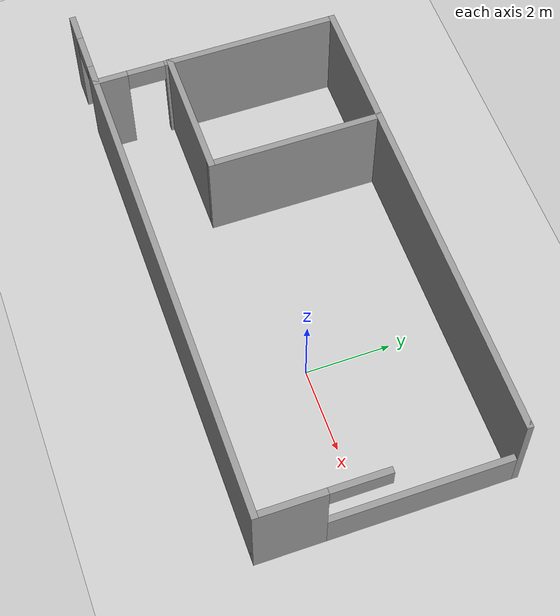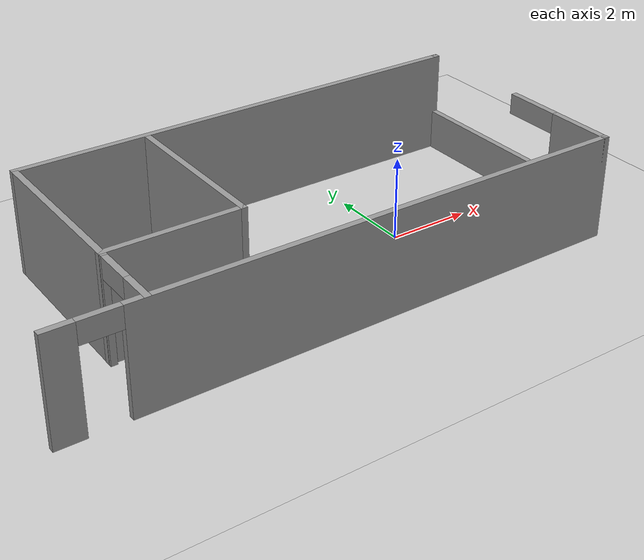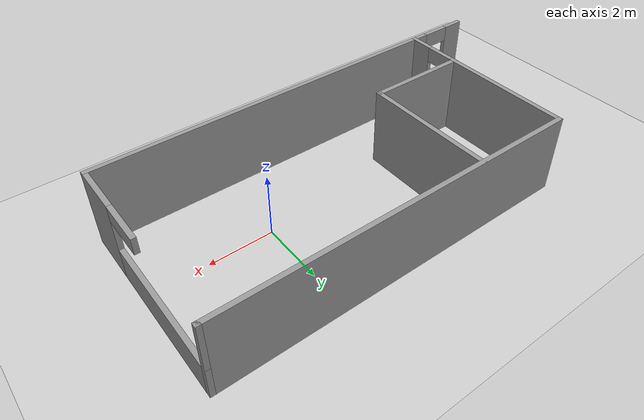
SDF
<sdf version="1.7">
 <world name="default">
  <light name="sun" type="directional">
   <pose>0 0 10 0 -0 0</pose>
   <diffuse>0.8 0.8 0.8 1</diffuse>
   <specular>0.2 0.2 0.2 1</specular>
   <attenuation>
    <range>1000</range>
    <constant>0.9</constant>
    <linear>0.01</linear>
    <quadratic>0.001</quadratic>
   </attenuation>
   <direction>-0.5 0.1 -0.9</direction>
   <spot><inner_angle>0</inner_angle><outer_angle>0</outer_angle><falloff>0</falloff></spot>
  </light>
  <model name="ground_plane">
   <static>1</static>
   <link name="link">
    <collision name="collision">
     <geometry><plane><normal>0 0 1</normal><size>100 100</size></plane></geometry>
     <surface><friction><ode><mu>100</mu><mu2>50</mu2></ode></friction></surface>
    </collision>
    <visual name="visual">
     <cast_shadows>0</cast_shadows>
     <geometry><plane><normal>0 0 1</normal><size>100 100</size></plane></geometry>
     <material>
      <script><uri>file://media/materials/scripts/gazebo.material</uri><name>Gazebo/Grey</name></script>
     </material>
    </visual>
   </link>
  </model>
  <gravity>0 0 -9.8</gravity>
  <magnetic_field>6e-06 2.3e-05 -4.2e-05</magnetic_field>
  <atmosphere type="adiabatic"/>
  <physics type="ode">
   <max_step_size>0.001</max_step_size>
   <real_time_factor>1</real_time_factor>
   <real_time_update_rate>1000</real_time_update_rate>
  </physics>
  <scene><ambient>0.4 0.4 0.4 1</ambient><background>0.7 0.7 0.7 1</background><shadows>1</shadows></scene>
  <audio><device>default</device></audio>
  <spherical_coordinates>
   <surface_model>EARTH_WGS84</surface_model>
   <latitude_deg>0</latitude_deg>
   <longitude_deg>0</longitude_deg>
   <elevation>0</elevation>
   <heading_deg>0</heading_deg>
  </spherical_coordinates>
  <model name="robotics_lab">
   <pose>-2.86455 0.433061 0 0 -0 0</pose>
   <link name="Wall_0">
    <pose>-0 -2.925 0 0 -0 0</pose>
    <visual name="Wall_0_Visual_0">
     <pose>-6.40405 0 1.25 0 -0 0</pose>
     <geometry><box><size>0.691894 0.15 2.5</size></box></geometry>
     <material>
      <script><uri>file://media/materials/scripts/gazebo.material</uri><name>Gazebo/Grey</name></script>
      <ambient>1 1 1 1</ambient>
     </material>
     <meta><layer>0</layer></meta>
    </visual>
    <collision name="Wall_0_Collision_0">
     <geometry><box><size>0.691894 0.15 2.5</size></box></geometry>
     <pose>-6.40405 0 1.25 0 -0 0</pose>
    </collision>
    <visual name="Wall_0_Visual_1">
     <pose>0.795947 0 1.25 0 -0 0</pose>
     <geometry><box><size>11.9081 0.15 2.5</size></box></geometry>
     <material>
      <script><uri>file://media/materials/scripts/gazebo.material</uri><name>Gazebo/Grey</name></script>
      <ambient>1 1 1 1</ambient>
     </material>
     <meta><layer>0</layer></meta>
    </visual>
    <collision name="Wall_0_Collision_1">
     <geometry><box><size>11.9081 0.15 2.5</size></box></geometry>
     <pose>0.795947 0 1.25 0 -0 0</pose>
    </collision>
    <visual name="Wall_0_Visual_2">
     <pose>-5.60811 0 2.25 0 -0 0</pose>
     <geometry><box><size>0.9 0.15 0.5</size></box></geometry>
     <material>
      <script><uri>file://media/materials/scripts/gazebo.material</uri><name>Gazebo/Grey</name></script>
      <ambient>1 1 1 1</ambient>
     </material>
     <meta><layer>0</layer></meta>
    </visual>
    <collision name="Wall_0_Collision_2">
     <geometry><box><size>0.9 0.15 0.5</size></box></geometry>
     <pose>-5.60811 0 2.25 0 -0 0</pose>
    </collision>
   </link>
   <link name="Wall_1">
    <pose>6.675 0 0 0 -0 1.5708</pose>
    <visual name="Wall_1_Visual_0">
     <pose>-2.18919 0 1.25 0 -0 0</pose>
     <geometry><box><size>1.62162 0.15 2.5</size></box></geometry>
     <material>
      <script><uri>file://media/materials/scripts/gazebo.material</uri><name>Gazebo/Grey</name></script>
      <ambient>1 1 1 1</ambient>
     </material>
     <meta><layer>0</layer></meta>
    </visual>
    <collision name="Wall_1_Collision_0">
     <geometry><box><size>1.62162 0.15 2.5</size></box></geometry>
     <pose>-2.18919 0 1.25 0 -0 0</pose>
    </collision>
    <visual name="Wall_1_Visual_1">
     <pose>0.810809 0 0.5 0 -0 0</pose>
     <geometry><box><size>4.37838 0.15 1</size></box></geometry>
     <material>
      <script><uri>file://media/materials/scripts/gazebo.material</uri><name>Gazebo/Grey</name></script>
      <ambient>1 1 1 1</ambient>
     </material>
     <meta><layer>0</layer></meta>
    </visual>
    <collision name="Wall_1_Collision_1">
     <geometry><box><size>4.37838 0.15 1</size></box></geometry>
     <pose>0.810809 0 0.5 0 -0 0</pose>
    </collision>
    <visual name="Wall_1_Visual_2">
     <pose>2.9296 0 1.75 0 -0 0</pose>
     <geometry><box><size>0.140808 0.15 1.5</size></box></geometry>
     <material>
      <script><uri>file://media/materials/scripts/gazebo.material</uri><name>Gazebo/Grey</name></script>
      <ambient>1 1 1 1</ambient>
     </material>
     <meta><layer>0</layer></meta>
    </visual>
    <collision name="Wall_1_Collision_2">
     <geometry><box><size>0.140808 0.15 1.5</size></box></geometry>
     <pose>2.9296 0 1.75 0 -0 0</pose>
    </collision>
    <visual name="Wall_1_Visual_3">
     <pose>-0.690683 0 2.25 0 -0 0</pose>
     <geometry><box><size>1.3754 0.15 0.5</size></box></geometry>
     <material>
      <script><uri>file://media/materials/scripts/gazebo.material</uri><name>Gazebo/Grey</name></script>
      <ambient>1 1 1 1</ambient>
     </material>
     <meta><layer>0</layer></meta>
    </visual>
    <collision name="Wall_1_Collision_3">
     <geometry><box><size>1.3754 0.15 0.5</size></box></geometry>
     <pose>-0.690683 0 2.25 0 -0 0</pose>
    </collision>
   </link>
   <link name="Wall_2">
    <collision name="Wall_2_Collision">
     <geometry><box><size>11.5 0.15 2.5</size></box></geometry>
     <pose>0 0 1.25 0 -0 0</pose>
    </collision>
    <visual name="Wall_2_Visual">
     <pose>0 0 1.25 0 -0 0</pose>
     <geometry><box><size>11.5 0.15 2.5</size></box></geometry>
     <material>
      <script><uri>file://media/materials/scripts/gazebo.material</uri><name>Gazebo/Grey</name></script>
      <ambient>1 1 1 1</ambient>
     </material>
     <meta><layer>0</layer></meta>
    </visual>
    <pose>1 2.925 0 0 -0 3.14159</pose>
   </link>
   <link name="Wall_3">
    <pose>-4.675 0 0 0 -0 -1.5708</pose>
    <visual name="Wall_3_Visual_0">
     <pose>-0.865907 0 1.25 0 -0 0</pose>
     <geometry><box><size>4.26819 0.15 2.5</size></box></geometry>
     <material>
      <script><uri>file://media/materials/scripts/gazebo.material</uri><name>Gazebo/Grey</name></script>
      <ambient>1 1 1 1</ambient>
     </material>
     <meta><layer>0</layer></meta>
    </visual>
    <collision name="Wall_3_Collision_0">
     <geometry><box><size>4.26819 0.15 2.5</size></box></geometry>
     <pose>-0.865907 0 1.25 0 -0 0</pose>
    </collision>
    <visual name="Wall_3_Visual_1">
     <pose>2.58409 0 1.25 0 -0 0</pose>
     <geometry><box><size>0.831814 0.15 2.5</size></box></geometry>
     <material>
      <script><uri>file://media/materials/scripts/gazebo.material</uri><name>Gazebo/Grey</name></script>
      <ambient>1 1 1 1</ambient>
     </material>
     <meta><layer>0</layer></meta>
    </visual>
    <collision name="Wall_3_Collision_1">
     <geometry><box><size>0.831814 0.15 2.5</size></box></geometry>
     <pose>2.58409 0 1.25 0 -0 0</pose>
    </collision>
    <visual name="Wall_3_Visual_2">
     <pose>1.71819 0 2.25 0 -0 0</pose>
     <geometry><box><size>0.9 0.15 0.5</size></box></geometry>
     <material>
      <script><uri>file://media/materials/scripts/gazebo.material</uri><name>Gazebo/Grey</name></script>
      <ambient>1 1 1 1</ambient>
     </material>
     <meta><layer>0</layer></meta>
    </visual>
    <collision name="Wall_3_Collision_2">
     <geometry><box><size>0.9 0.15 0.5</size></box></geometry>
     <pose>1.71819 0 2.25 0 -0 0</pose>
    </collision>
   </link>
   <link name="Wall_5">
    <collision name="Wall_5_Collision">
     <geometry><box><size>3.25 0.15 2.5</size></box></geometry>
     <pose>0 0 1.25 0 -0 0</pose>
    </collision>
    <visual name="Wall_5_Visual">
     <pose>0 0 1.25 0 -0 0</pose>
     <geometry><box><size>3.25 0.15 2.5</size></box></geometry>
     <material>
      <script><uri>file://media/materials/scripts/gazebo.material</uri><name>Gazebo/Grey</name></script>
      <ambient>1 1 1 1</ambient>
     </material>
     <meta><layer>0</layer></meta>
    </visual>
    <pose>-3.13113 -1.12352 0 0 -0 0</pose>
   </link>
   <link name="Wall_6">
    <collision name="Wall_6_Collision">
     <geometry><box><size>4.18 0.15 2.5</size></box></geometry>
     <pose>0 0 1.25 0 -0 0</pose>
    </collision>
    <visual name="Wall_6_Visual">
     <pose>0 0 1.25 0 -0 0</pose>
     <geometry><box><size>4.18 0.15 2.5</size></box></geometry>
     <material>
      <script><uri>file://media/materials/scripts/gazebo.material</uri><name>Gazebo/Grey</name></script>
      <ambient>1 1 1 1</ambient>
     </material>
     <meta><layer>0</layer></meta>
    </visual>
    <pose>-1.58113 0.891477 0 0 -0 1.5708</pose>
   </link>
   <static>1</static>
  </model>
 </world>
</sdf>
